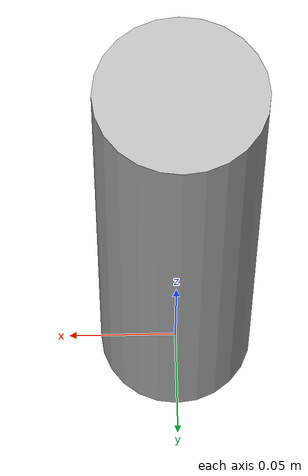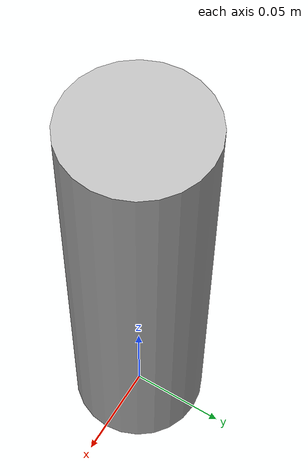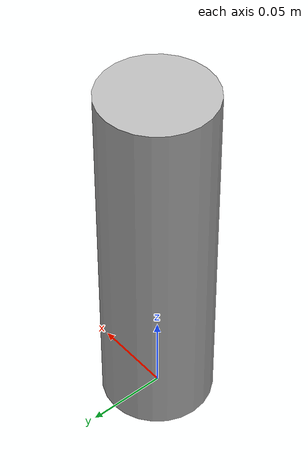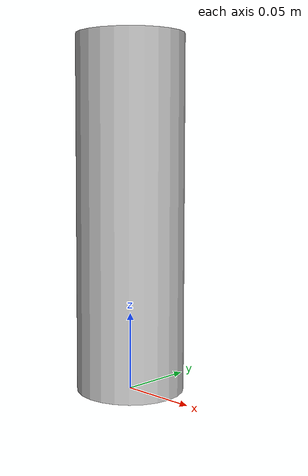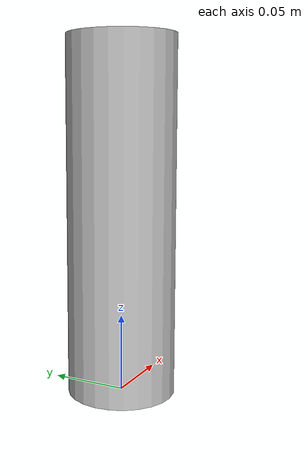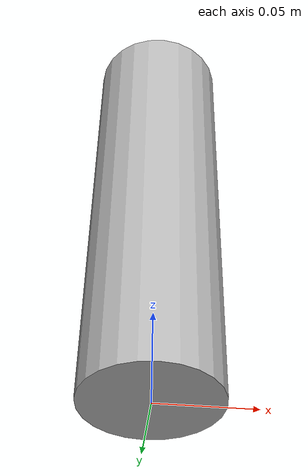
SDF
<?xml version='1.0'?>
<sdf version='1.4'>
  <model name="small beer">
    <link name='link'>
      <pose>0 0 0.115 0 0 0</pose>
      <inertial>
        <mass>0.390</mass>
        <inertia>
          <ixx>0.00058</ixx>
          <ixy>0</ixy>
          <ixz>0</ixz>
          <iyy>0.00058</iyy>
          <iyz>0</iyz>
          <izz>0.00019</izz>
        </inertia>
      </inertial>
      <collision name='collision'>
        <geometry>
          <cylinder>
            <radius>0.035000</radius>
            <length>0.230000</length>
          </cylinder>
        </geometry>
      </collision>

      <visual name='visual'>
        <geometry>
          <cylinder>
            <radius>0.035000</radius>
            <length>0.230000</length>
          </cylinder>
        </geometry>

        <material>
          <script>
            <uri>model://beer/materials/scripts</uri>
            <uri>model://beer/materials/textures</uri>
            <name>Beer/Diffuse</name>
          </script>
        </material>
      </visual>
      <collision name="collision_anti_slip_ring">
        <pose> 0 0 0.08 0 0 0</pose>
        <geometry>
          <cylinder>
            <radius>0.050000</radius>
            <length>0.010000</length>
          </cylinder>
        </geometry>
      </collision>
    </link>
  </model>
</sdf>
